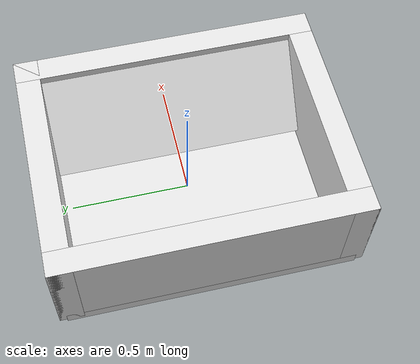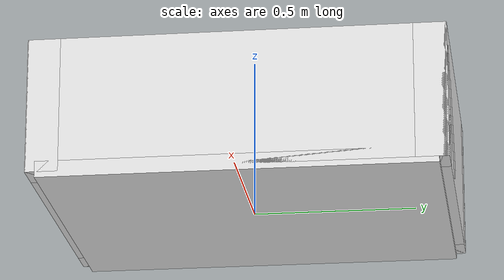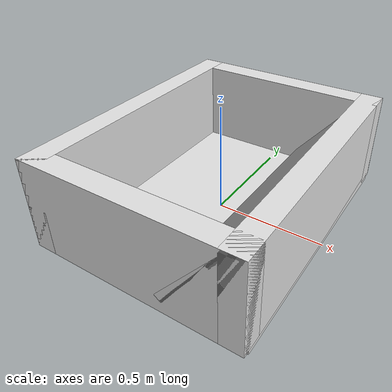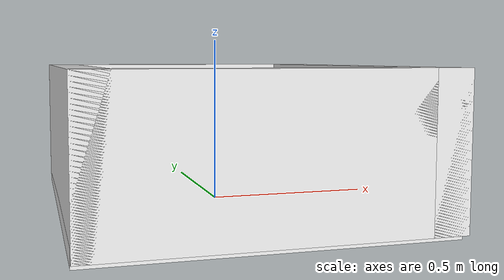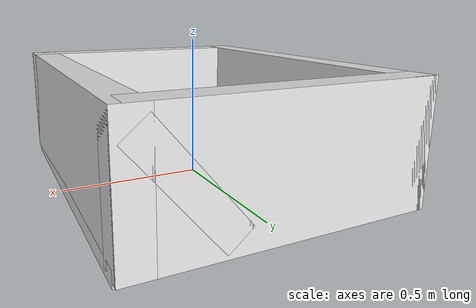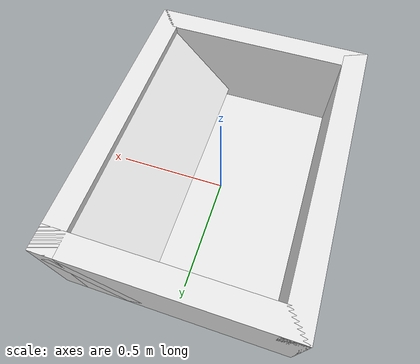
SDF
<?xml version="1.0"?>
<sdf version="1.7">
  <model name="bin_model">
    <!--
    Axes:
      +X - Pointing towards front (slope)
      +Y - Pointing to left side
      +Z - Up
    Origin:
      (0, 0, 0) at the center bottom of the bin
    -->
    <link name="bin_base">
      <inertial>
        <mass>18.70</mass>
        <inertia>
          <ixx>0.79</ixx>
          <ixy>0</ixy>
          <ixz>0</ixz>
          <iyy>0.53</iyy>
          <iyz>0</iyz>
          <izz>1.2</izz>
        </inertia>
      </inertial>
      <visual name="visual">
        <pose>0.44 0 0.21 0 0 0</pose>
        <geometry>
          <box>
            <size>0.1 1.26 0.42</size>
          </box>
        </geometry>
        <material>
          <diffuse>0.9 0.9 0.9 1.0</diffuse>
        </material>
      </visual>
      <collision name="front">
        <pose>0.44 0 0.21 0 0 0</pose>
        <geometry>
          <box>
            <size>0.1 1.26 0.42</size>
          </box>
        </geometry>
        <drake:proximity_properties>
          <drake:compliant_hydroelastic/>
          <drake:hydroelastic_modulus>1.0e6</drake:hydroelastic_modulus>
        </drake:proximity_properties>
      </collision>
      <visual name="slope">
        <pose>0.3 0 0.204 0 0.7 0</pose>
        <geometry>
          <box>
            <size>0.1 1.26 0.42</size>
          </box>
        </geometry>
        <material>
          <diffuse>0.9 0.9 0.9 1.0</diffuse>
        </material>
      </visual>
      <collision name="slope">
        <pose>0.3 0 0.204 0 0.7 0</pose>
        <geometry>
          <box>
            <size>0.1 1.26 0.42</size>
          </box>
        </geometry>
        <drake:proximity_properties>
          <drake:compliant_hydroelastic/>
          <drake:hydroelastic_modulus>1.0e6</drake:hydroelastic_modulus>
        </drake:proximity_properties>
      </collision>
      <visual name="back">
        <pose>-0.44 0 0.21 0 0 0</pose>
        <geometry>
          <box>
            <size>0.1 1.26 0.42</size>
          </box>
        </geometry>
        <material>
          <diffuse>0.9 0.9 0.9 1.0</diffuse>
        </material>
      </visual>
      <collision name="back">
        <pose>-0.44 0 0.21 0 0 0</pose>
        <geometry>
          <box>
            <size>0.1 1.26 0.42</size>
          </box>
        </geometry>
        <drake:proximity_properties>
          <drake:compliant_hydroelastic/>
          <drake:hydroelastic_modulus>1.0e6</drake:hydroelastic_modulus>
        </drake:proximity_properties>
      </collision>
      <visual name="left">
        <pose>0 0.58 0.21 0 0 0</pose>
        <geometry>
          <box>
            <size>0.98 0.1 0.42</size>
          </box>
        </geometry>
        <material>
          <diffuse>0.9 0.9 0.9 1.0</diffuse>
        </material>
      </visual>
      <collision name="left">
        <pose>0 0.58 0.21 0 0 0</pose>
        <geometry>
          <box>
            <size>0.98 0.1 0.42</size>
          </box>
        </geometry>
        <drake:proximity_properties>
          <drake:compliant_hydroelastic/>
          <drake:hydroelastic_modulus>1.0e6</drake:hydroelastic_modulus>
        </drake:proximity_properties>
      </collision>
      <visual name="right">
        <pose>0 -0.58 0.21 0 0 0</pose>
        <geometry>
          <box>
            <size>0.98 0.1 0.42</size>
          </box>
        </geometry>
        <material>
          <diffuse>0.9 0.9 0.9 1.0</diffuse>
        </material>
      </visual>
      <collision name="right">
        <pose>0 -0.58 0.21 0 0 0</pose>
        <geometry>
          <box>
            <size>0.98 0.1 0.42</size>
          </box>
        </geometry>
        <drake:proximity_properties>
          <drake:compliant_hydroelastic/>
          <drake:hydroelastic_modulus>1.0e6</drake:hydroelastic_modulus>
        </drake:proximity_properties>
      </collision>
      <visual name="bottom">
        <pose>0.0 0.0 0.0075 0 0 0</pose>
        <geometry>
          <box>
            <size>0.98 1.2 0.05</size>
          </box>
        </geometry>
        <material>
          <diffuse>0.9 0.9 0.9 1.0</diffuse>
        </material>
      </visual>
      <collision name="bottom">
        <pose>0.0 0.0 0.0075 0 0 0</pose>
        <geometry>
          <box>
            <size>0.98 1.2 0.05</size>
          </box>
        </geometry>
        <drake:proximity_properties>
          <drake:compliant_hydroelastic/>
          <drake:hydroelastic_modulus>1.0e6</drake:hydroelastic_modulus>
        </drake:proximity_properties>
      </collision>
    </link>
    <frame name="bin_front_top_center">
      <pose relative_to="bin_base">0.44 0 0.42 0 0 0</pose>
    </frame>
  </model>
</sdf>
